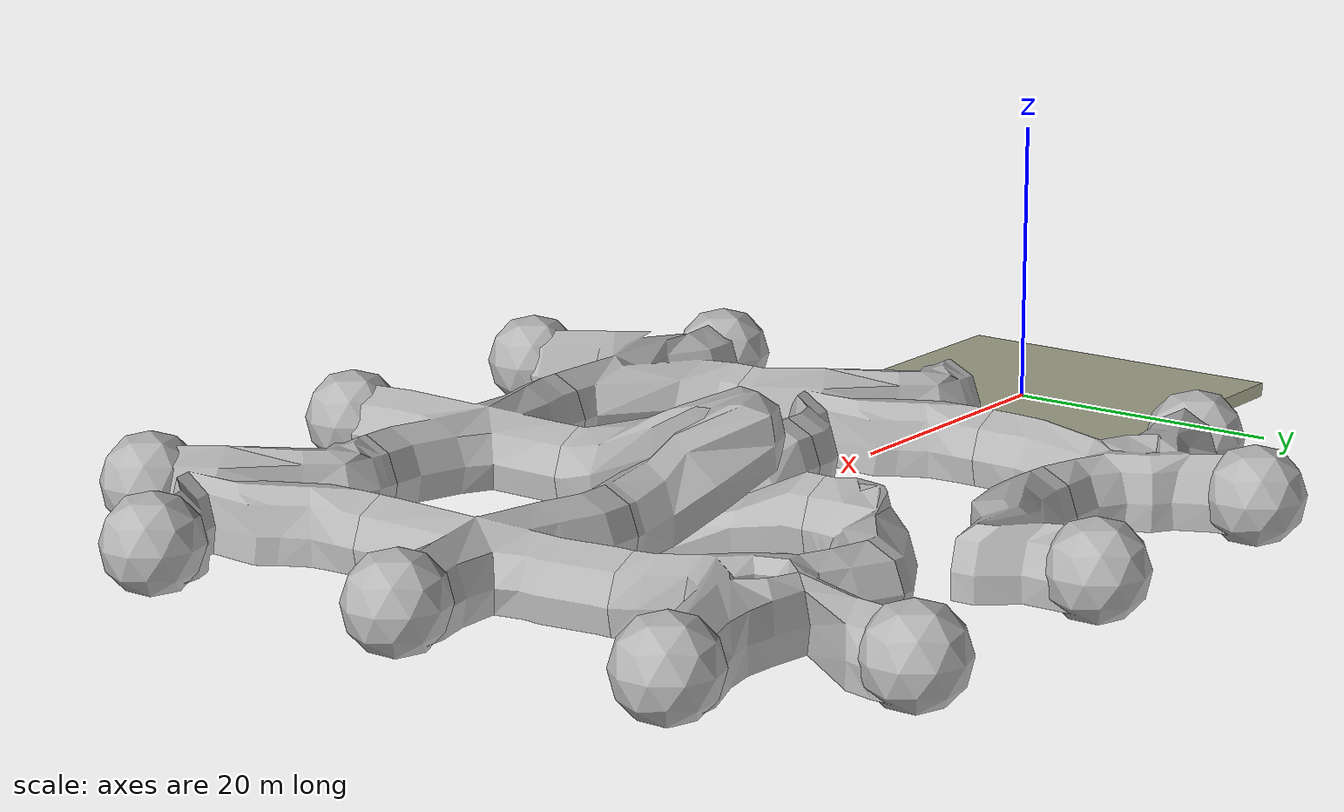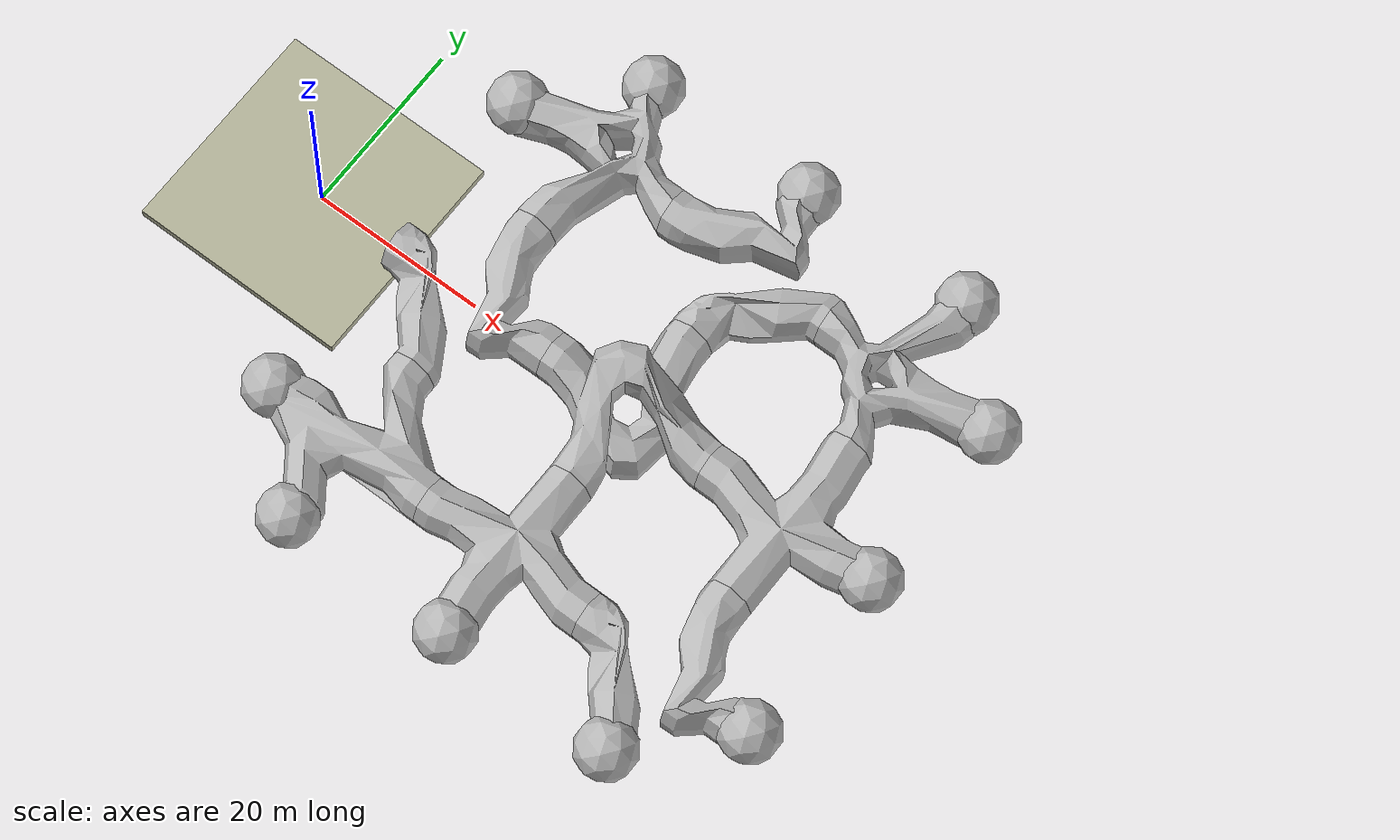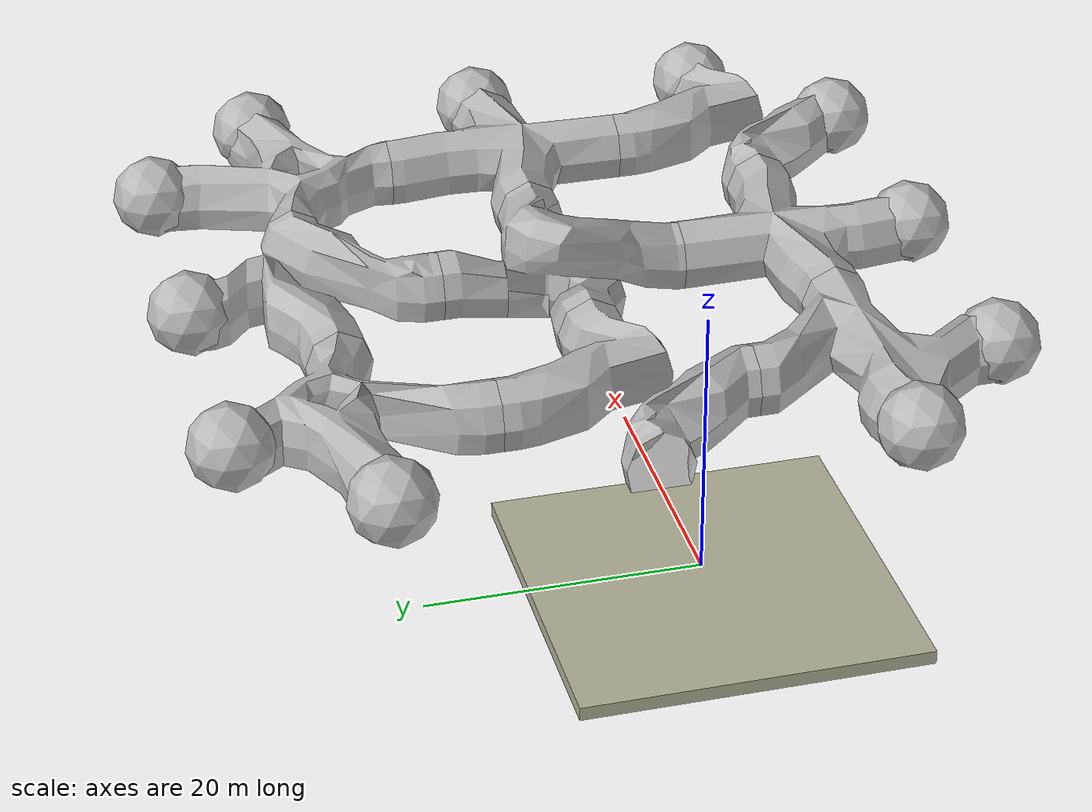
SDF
<sdf version="1.6">
 <world name="default">
  <scene>
   <ambient>0.8 0.8 0.8 1.0</ambient>
   <background>0.34 0.39 0.43 1.0</background>
   <grid>false</grid>
   <origin_visual>false</origin_visual>
  </scene>
  <model name="staging">
   <pose>-1.1817160000000015 0 -0.002 0 0 0</pose>
   <static>true</static>
   <link name="link">
    <pose>0 0 -0.5 0 0 0</pose>
    <visual name="visual">
     <geometry><box><size>25 25 1</size></box></geometry>
     <material>
      <script><uri>file://media/materials/scripts/gazebo.material</uri><name>Gazebo/Residential</name></script>
     </material>
    </visual>
    <collision name="collision"><geometry><box><size>25 20 1</size></box></geometry></collision>
   </link>
  </model>
  <model name="tunnel_entrance">
   <pose>10
        0
        -0.001
        0
        0
        -1.5707963267948966</pose>
   <static>true</static>
   <link name="link">
    <collision name="collision">
     <geometry>
      <mesh>
       <scale>0.008
                0.008 0.008</scale>
       <uri>model://tunnel_entrance/meshes/Entrance.obj</uri>
      </mesh>
     </geometry>
    </collision>
    <visual name="visual">
     <geometry>
      <mesh>
       <scale>0.008
                0.008 0.008</scale>
       <uri>model://tunnel_entrance/meshes/Entrance.obj</uri>
      </mesh>
     </geometry>
    </visual>
   </link>
  </model>
  <model name="start_area">
   <static>true</static>
   <pose>10
        0
        1.5
        0
        0
        0</pose>
   <link name="link">
    <collision name="collision">
     <geometry><box><size>1.0
                5.0
                3.0</size></box></geometry>
     <surface><contact><collide_without_contact>1</collide_without_contact></contact></surface>
    </collision>
    <sensor name="start_area_sensor" type="contact"><contact><collision>collision</collision></contact></sensor>
   </link>
   <plugin name="touch_start_area" filename="libTouchPlugin.so">
    <sensor>start_area_sensor</sensor>
    <time>0.001</time>
    <namespace>subt/start</namespace>
    <enabled>true</enabled>
   </plugin>
  </model>
  <plugin name="game_logic_plugin" filename="libGameLogicPlugin.so"/>
  <light name="user_spot_light_0" type="spot">
   <pose>12 0 15 0 0.65 0</pose>
   <diffuse>1 1 1 1</diffuse>
   <specular>0.1 0.1 0.1 1</specular>
   <direction>0 0 -1</direction>
   <attenuation>
    <range>30</range>
    <constant>0.001</constant>
    <linear>0.01</linear>
    <quadratic>0.000</quadratic>
   </attenuation>
   <spot><inner_angle>0.0</inner_angle><outer_angle>1.5</outer_angle><falloff>0.01</falloff></spot>
  </light>
  <include>
   <uri>model://cave_tile_5</uri>
   <name>tile_1</name>
   <pose>20 -20 0 0 0 3.141592653589793</pose>
  </include>
  <include>
   <uri>model://cave_tile_4</uri>
   <name>tile_2</name>
   <pose>20 0 0 0 0 -1.5707963267948966</pose>
  </include>
  <include><uri>model://cave_tile_8</uri><name>tile_3</name><pose>20 20 0 0 0 0</pose></include>
  <include>
   <uri>model://cave_tile_3</uri>
   <name>tile_4</name>
   <pose>40 -20 0 0 0 -1.5707963267948966</pose>
  </include>
  <include><uri>model://cave_tile_9</uri><name>tile_5</name><pose>40 0 0 0 0 1.5707963267948966</pose></include>
  <include><uri>model://cave_tile_4</uri><name>tile_6</name><pose>40 20 0 0 0 0</pose></include>
  <include>
   <uri>model://cave_tile_4</uri>
   <name>tile_7</name>
   <pose>60 -20 0 0 0 -1.5707963267948966</pose>
  </include>
  <include><uri>model://cave_tile_3</uri><name>tile_8</name><pose>60 0 0 0 0 1.5707963267948966</pose></include>
  <include><uri>model://cave_tile_8</uri><name>tile_9</name><pose>60 20 0 0 0 3.141592653589793</pose></include>
  <model name="blocker_10">
   <pose>20
    -30.0
    0
    0
    0
    0</pose>
   <static>true</static>
   <link name="link">
    <pose>0 0 0 1.5707963267948966 0 0</pose>
    <collision name="collision">
     <geometry>
      <mesh><scale>1.2 1.2 1.2</scale><uri>model://cave_tile_blocker/meshes/cave_tile_blocker.obj</uri></mesh>
     </geometry>
    </collision>
    <visual name="visual">
     <geometry>
      <mesh><scale>1.2 1.2 1.2</scale><uri>model://cave_tile_blocker/meshes/cave_tile_blocker.obj</uri></mesh>
     </geometry>
    </visual>
   </link>
  </model>
  <model name="blocker_11">
   <pose>20
    30.0
    0
    0
    0
    0</pose>
   <static>true</static>
   <link name="link">
    <pose>0 0 0 1.5707963267948966 0 0</pose>
    <collision name="collision">
     <geometry>
      <mesh><scale>1.2 1.2 1.2</scale><uri>model://cave_tile_blocker/meshes/cave_tile_blocker.obj</uri></mesh>
     </geometry>
    </collision>
    <visual name="visual">
     <geometry>
      <mesh><scale>1.2 1.2 1.2</scale><uri>model://cave_tile_blocker/meshes/cave_tile_blocker.obj</uri></mesh>
     </geometry>
    </visual>
   </link>
  </model>
  <model name="blocker_12">
   <pose>40
    -30.0
    0
    0
    0
    0</pose>
   <static>true</static>
   <link name="link">
    <pose>0 0 0 1.5707963267948966 0 0</pose>
    <collision name="collision">
     <geometry>
      <mesh><scale>1.2 1.2 1.2</scale><uri>model://cave_tile_blocker/meshes/cave_tile_blocker.obj</uri></mesh>
     </geometry>
    </collision>
    <visual name="visual">
     <geometry>
      <mesh><scale>1.2 1.2 1.2</scale><uri>model://cave_tile_blocker/meshes/cave_tile_blocker.obj</uri></mesh>
     </geometry>
    </visual>
   </link>
  </model>
  <model name="blocker_13">
   <pose>40
    30.0
    0
    0
    0
    0</pose>
   <static>true</static>
   <link name="link">
    <pose>0 0 0 1.5707963267948966 0 0</pose>
    <collision name="collision">
     <geometry>
      <mesh><scale>1.2 1.2 1.2</scale><uri>model://cave_tile_blocker/meshes/cave_tile_blocker.obj</uri></mesh>
     </geometry>
    </collision>
    <visual name="visual">
     <geometry>
      <mesh><scale>1.2 1.2 1.2</scale><uri>model://cave_tile_blocker/meshes/cave_tile_blocker.obj</uri></mesh>
     </geometry>
    </visual>
   </link>
  </model>
  <model name="blocker_14">
   <pose>60
    -30.0
    0
    0
    0
    0</pose>
   <static>true</static>
   <link name="link">
    <pose>0 0 0 1.5707963267948966 0 0</pose>
    <collision name="collision">
     <geometry>
      <mesh><scale>1.2 1.2 1.2</scale><uri>model://cave_tile_blocker/meshes/cave_tile_blocker.obj</uri></mesh>
     </geometry>
    </collision>
    <visual name="visual">
     <geometry>
      <mesh><scale>1.2 1.2 1.2</scale><uri>model://cave_tile_blocker/meshes/cave_tile_blocker.obj</uri></mesh>
     </geometry>
    </visual>
   </link>
  </model>
  <model name="blocker_15">
   <pose>60
    30.0
    0
    0
    0
    0</pose>
   <static>true</static>
   <link name="link">
    <pose>0 0 0 1.5707963267948966 0 0</pose>
    <collision name="collision">
     <geometry>
      <mesh><scale>1.2 1.2 1.2</scale><uri>model://cave_tile_blocker/meshes/cave_tile_blocker.obj</uri></mesh>
     </geometry>
    </collision>
    <visual name="visual">
     <geometry>
      <mesh><scale>1.2 1.2 1.2</scale><uri>model://cave_tile_blocker/meshes/cave_tile_blocker.obj</uri></mesh>
     </geometry>
    </visual>
   </link>
  </model>
  <model name="blocker_16">
   <pose>10.0
    -20
    0
    0
    0
    0</pose>
   <static>true</static>
   <link name="link">
    <pose>0 0 0 1.5707963267948966 0 0</pose>
    <collision name="collision">
     <geometry>
      <mesh><scale>1.2 1.2 1.2</scale><uri>model://cave_tile_blocker/meshes/cave_tile_blocker.obj</uri></mesh>
     </geometry>
    </collision>
    <visual name="visual">
     <geometry>
      <mesh><scale>1.2 1.2 1.2</scale><uri>model://cave_tile_blocker/meshes/cave_tile_blocker.obj</uri></mesh>
     </geometry>
    </visual>
   </link>
  </model>
  <model name="blocker_17">
   <pose>70.0
    -20
    0
    0
    0
    0</pose>
   <static>true</static>
   <link name="link">
    <pose>0 0 0 1.5707963267948966 0 0</pose>
    <collision name="collision">
     <geometry>
      <mesh><scale>1.2 1.2 1.2</scale><uri>model://cave_tile_blocker/meshes/cave_tile_blocker.obj</uri></mesh>
     </geometry>
    </collision>
    <visual name="visual">
     <geometry>
      <mesh><scale>1.2 1.2 1.2</scale><uri>model://cave_tile_blocker/meshes/cave_tile_blocker.obj</uri></mesh>
     </geometry>
    </visual>
   </link>
  </model>
  <model name="blocker_18">
   <pose>70.0
    0
    0
    0
    0
    0</pose>
   <static>true</static>
   <link name="link">
    <pose>0 0 0 1.5707963267948966 0 0</pose>
    <collision name="collision">
     <geometry>
      <mesh><scale>1.2 1.2 1.2</scale><uri>model://cave_tile_blocker/meshes/cave_tile_blocker.obj</uri></mesh>
     </geometry>
    </collision>
    <visual name="visual">
     <geometry>
      <mesh><scale>1.2 1.2 1.2</scale><uri>model://cave_tile_blocker/meshes/cave_tile_blocker.obj</uri></mesh>
     </geometry>
    </visual>
   </link>
  </model>
  <model name="blocker_19">
   <pose>10.0
    20
    0
    0
    0
    0</pose>
   <static>true</static>
   <link name="link">
    <pose>0 0 0 1.5707963267948966 0 0</pose>
    <collision name="collision">
     <geometry>
      <mesh><scale>1.2 1.2 1.2</scale><uri>model://cave_tile_blocker/meshes/cave_tile_blocker.obj</uri></mesh>
     </geometry>
    </collision>
    <visual name="visual">
     <geometry>
      <mesh><scale>1.2 1.2 1.2</scale><uri>model://cave_tile_blocker/meshes/cave_tile_blocker.obj</uri></mesh>
     </geometry>
    </visual>
   </link>
  </model>
  <model name="blocker_20">
   <pose>70.0
    20
    0
    0
    0
    0</pose>
   <static>true</static>
   <link name="link">
    <pose>0 0 0 1.5707963267948966 0 0</pose>
    <collision name="collision">
     <geometry>
      <mesh><scale>1.2 1.2 1.2</scale><uri>model://cave_tile_blocker/meshes/cave_tile_blocker.obj</uri></mesh>
     </geometry>
    </collision>
    <visual name="visual">
     <geometry>
      <mesh><scale>1.2 1.2 1.2</scale><uri>model://cave_tile_blocker/meshes/cave_tile_blocker.obj</uri></mesh>
     </geometry>
    </visual>
   </link>
  </model>
  <plugin name="comms_broker_plugin" filename="libCommsBrokerPlugin.so"/>
  <plugin name="ros_interface_plugin" filename="librotors_gazebo_ros_interface_plugin.so"/>
 </world>
</sdf>

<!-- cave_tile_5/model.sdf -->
<sdf version="1.6">
  <model name="cave_tile_5">
    <static>true</static>
    <link name="link">
      <pose>0 0 0 1.570796 0 0</pose>
      <collision name="collision">
        <geometry>
          <mesh>
            <uri>model://cave_tile_5/meshes/cave_tile_5.obj</uri>
          </mesh>
        </geometry>
      </collision>
      <visual name="visual">
        <geometry>
          <mesh>
            <uri>model://cave_tile_5/meshes/cave_tile_5.obj</uri>
          </mesh>
        </geometry>
      </visual>
    </link>
  </model>
</sdf>

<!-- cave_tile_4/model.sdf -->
<sdf version="1.6">
  <model name="cave_tile_4">
    <static>true</static>
    <link name="link">
      <pose>0 0 0 1.570796 0 0</pose>
      <collision name="collision">
        <geometry>
          <mesh>
            <uri>model://cave_tile_4/meshes/cave_tile_4.obj</uri>
          </mesh>
        </geometry>
      </collision>
      <visual name="visual">
        <geometry>
          <mesh>
            <uri>model://cave_tile_4/meshes/cave_tile_4.obj</uri>
          </mesh>
        </geometry>
      </visual>
    </link>
  </model>
</sdf>

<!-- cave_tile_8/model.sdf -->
<sdf version="1.6">
  <model name="cave_tile_8">
    <static>true</static>
    <link name="link">
      <pose>0 0 0 1.570796 0 0</pose>
      <collision name="collision">
        <geometry>
          <mesh>
            <uri>model://cave_tile_8/meshes/cave_tile_8.obj</uri>
          </mesh>
        </geometry>
      </collision>
      <visual name="visual">
        <geometry>
          <mesh>
            <uri>model://cave_tile_8/meshes/cave_tile_8.obj</uri>
          </mesh>
        </geometry>
      </visual>
    </link>
  </model>
</sdf>

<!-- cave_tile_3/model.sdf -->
<sdf version="1.6">
  <model name="cave_tile_3">
    <static>true</static>
    <link name="link">
      <pose>0 0 0 1.570796 0 0</pose>
      <collision name="collision">
        <geometry>
          <mesh>
            <uri>model://cave_tile_3/meshes/cave_tile_3.obj</uri>
          </mesh>
        </geometry>
      </collision>
      <visual name="visual">
        <geometry>
          <mesh>
            <uri>model://cave_tile_3/meshes/cave_tile_3.obj</uri>
          </mesh>
        </geometry>
      </visual>
    </link>
  </model>
</sdf>

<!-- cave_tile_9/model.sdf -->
<sdf version="1.6">
  <model name="cave_tile_9">
    <static>true</static>
    <link name="link">
      <pose>0 0 0 1.570796 0 0</pose>
      <collision name="collision">
        <geometry>
          <mesh>
            <uri>model://cave_tile_9/meshes/cave_tile_9.obj</uri>
          </mesh>
        </geometry>
      </collision>
      <visual name="visual">
        <geometry>
          <mesh>
            <uri>model://cave_tile_9/meshes/cave_tile_9.obj</uri>
          </mesh>
        </geometry>
      </visual>
    </link>
  </model>
</sdf>
